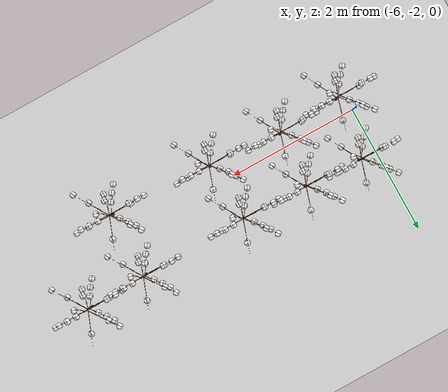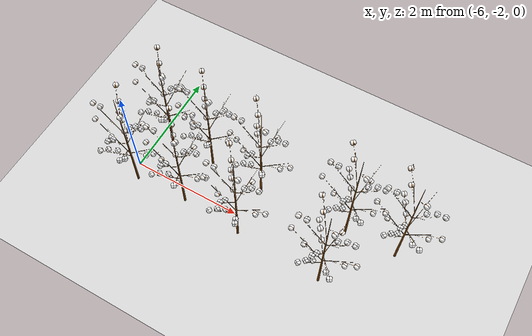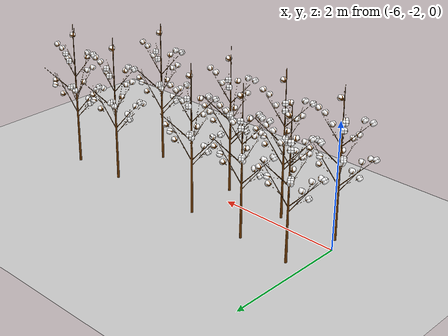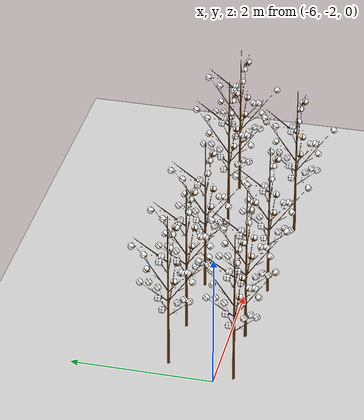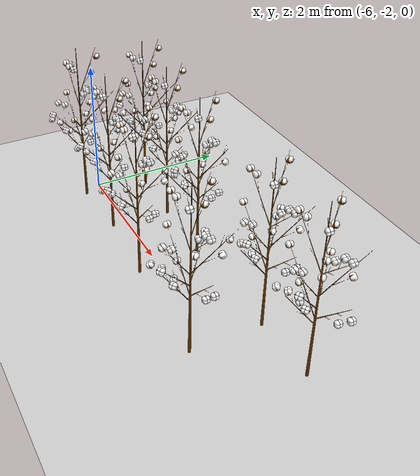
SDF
<sdf version="1.6">
 <world name="default">
  <model name="earth_plane">
   <static>1</static>
   <link name="link">
    <collision name="collision">
     <geometry><plane><normal>0 0 1</normal><size>100 100</size></plane></geometry>
     <surface><friction><ode><mu>100</mu><mu2>50</mu2></ode></friction></surface>
    </collision>
    <visual name="visual">
     <cast_shadows>0</cast_shadows>
     <geometry><plane><normal>0 0 1</normal><size>100 100</size></plane></geometry>
     <material>
      <script>
       <uri>model://earth_plane/materials/scripts</uri>
       <uri>model://earth_plane/materials/textures</uri>
       <name>vrc/earth</name>
      </script>
     </material>
    </visual>
    <velocity_decay><linear>0</linear><angular>0</angular></velocity_decay>
   </link>
  </model>
  <model name="cotton_clone_11">
   <link name="link">
    <collision name="collision">
     <geometry><mesh><scale>1 1 1</scale><uri>model://cotton/meshes/cotton.dae</uri></mesh></geometry>
    </collision>
    <inertial>
     <mass>1</mass>
     <inertia>
      <ixx>0.166667</ixx>
      <ixy>0</ixy>
      <ixz>0</ixz>
      <iyy>0.166667</iyy>
      <iyz>0</iyz>
      <izz>0.166667</izz>
     </inertia>
    </inertial>
    <visual name="visual">
     <geometry><mesh><scale>1 1 1</scale><uri>model://cotton/meshes/cotton.dae</uri></mesh></geometry>
    </visual>
    <velocity_decay><linear>0</linear><angular>0</angular></velocity_decay>
    <gravity>0</gravity>
   </link>
   <pose>-2.39067 -3 0 0 -0 0</pose>
   <static>1</static>
  </model>
  <model name="cotton_clone_12">
   <link name="link">
    <collision name="collision">
     <geometry><mesh><scale>1 1 1</scale><uri>model://cotton/meshes/cotton.dae</uri></mesh></geometry>
    </collision>
    <inertial>
     <mass>1</mass>
     <inertia>
      <ixx>0.166667</ixx>
      <ixy>0</ixy>
      <ixz>0</ixz>
      <iyy>0.166667</iyy>
      <iyz>0</iyz>
      <izz>0.166667</izz>
     </inertia>
    </inertial>
    <visual name="visual">
     <geometry><mesh><scale>1 1 1</scale><uri>model://cotton/meshes/cotton.dae</uri></mesh></geometry>
    </visual>
    <velocity_decay><linear>0</linear><angular>0</angular></velocity_decay>
    <gravity>0</gravity>
   </link>
   <pose>-2.251471 -2.062685 0 0 -0 0</pose>
   <static>1</static>
  </model>
  <model name="cotton_clone_13">
   <link name="link">
    <collision name="collision">
     <geometry><mesh><scale>1 1 1</scale><uri>model://cotton/meshes/cotton.dae</uri></mesh></geometry>
    </collision>
    <inertial>
     <mass>1</mass>
     <inertia>
      <ixx>0.166667</ixx>
      <ixy>0</ixy>
      <ixz>0</ixz>
      <iyy>0.166667</iyy>
      <iyz>0</iyz>
      <izz>0.166667</izz>
     </inertia>
    </inertial>
    <visual name="visual">
     <geometry><mesh><scale>1 1 1</scale><uri>model://cotton/meshes/cotton.dae</uri></mesh></geometry>
    </visual>
    <velocity_decay><linear>0</linear><angular>0</angular></velocity_decay>
    <gravity>0</gravity>
   </link>
   <pose>-1.427634 -2.955015 0 0 -0 0</pose>
   <static>1</static>
  </model>
  <model name="cotton_clone_14">
   <link name="link">
    <collision name="collision">
     <geometry><mesh><scale>1 1 1</scale><uri>model://cotton/meshes/cotton.dae</uri></mesh></geometry>
    </collision>
    <inertial>
     <mass>1</mass>
     <inertia>
      <ixx>0.166667</ixx>
      <ixy>0</ixy>
      <ixz>0</ixz>
      <iyy>0.166667</iyy>
      <iyz>0</iyz>
      <izz>0.166667</izz>
     </inertia>
    </inertial>
    <visual name="visual">
     <geometry><mesh><scale>1 1 1</scale><uri>model://cotton/meshes/cotton.dae</uri></mesh></geometry>
    </visual>
    <velocity_decay><linear>0</linear><angular>0</angular></velocity_decay>
    <gravity>0</gravity>
   </link>
   <pose>-1.374254 -2.105651 0 0 -0 0</pose>
   <static>1</static>
  </model>
  <model name="cotton_clone_15">
   <link name="link">
    <collision name="collision">
     <geometry><mesh><scale>1 1 1</scale><uri>model://cotton/meshes/cotton.dae</uri></mesh></geometry>
    </collision>
    <inertial>
     <mass>1</mass>
     <inertia>
      <ixx>0.166667</ixx>
      <ixy>0</ixy>
      <ixz>0</ixz>
      <iyy>0.166667</iyy>
      <iyz>0</iyz>
      <izz>0.166667</izz>
     </inertia>
    </inertial>
    <visual name="visual">
     <geometry><mesh><scale>1 1 1</scale><uri>model://cotton/meshes/cotton.dae</uri></mesh></geometry>
    </visual>
    <velocity_decay><linear>0</linear><angular>0</angular></velocity_decay>
    <gravity>0</gravity>
   </link>
   <pose>-0.363088 -2.138568 0 0 -0 0</pose>
   <static>1</static>
  </model>
  <model name="cotton_clone_16">
   <link name="link">
    <collision name="collision">
     <geometry><mesh><scale>1 1 1</scale><uri>model://cotton/meshes/cotton.dae</uri></mesh></geometry>
    </collision>
    <inertial>
     <mass>1</mass>
     <inertia>
      <ixx>0.166667</ixx>
      <ixy>0</ixy>
      <ixz>0</ixz>
      <iyy>0.166667</iyy>
      <iyz>0</iyz>
      <izz>0.166667</izz>
     </inertia>
    </inertial>
    <visual name="visual">
     <geometry><mesh><scale>1 1 1</scale><uri>model://cotton/meshes/cotton.dae</uri></mesh></geometry>
    </visual>
    <velocity_decay><linear>0</linear><angular>0</angular></velocity_decay>
    <gravity>0</gravity>
   </link>
   <pose>-0.304355 -3.03714 0 0 -0 0</pose>
   <static>1</static>
  </model>
  <model name="cotton_clone_17">
   <link name="link">
    <collision name="collision">
     <geometry><mesh><scale>1 1 1</scale><uri>model://cotton/meshes/cotton.dae</uri></mesh></geometry>
    </collision>
    <inertial>
     <mass>1</mass>
     <inertia>
      <ixx>0.166667</ixx>
      <ixy>0</ixy>
      <ixz>0</ixz>
      <iyy>0.166667</iyy>
      <iyz>0</iyz>
      <izz>0.166667</izz>
     </inertia>
    </inertial>
    <visual name="visual">
     <geometry><mesh><scale>1 1 1</scale><uri>model://cotton/meshes/cotton.dae</uri></mesh></geometry>
    </visual>
    <velocity_decay><linear>0</linear><angular>0</angular></velocity_decay>
    <gravity>0</gravity>
   </link>
   <pose>2.202172 -2.084283 0 0 -0 0</pose>
   <static>1</static>
  </model>
  <model name="cotton_clone_19">
   <link name="link">
    <collision name="collision">
     <geometry><mesh><scale>1 1 1</scale><uri>model://cotton/meshes/cotton.dae</uri></mesh></geometry>
    </collision>
    <inertial>
     <mass>1</mass>
     <inertia>
      <ixx>0.166667</ixx>
      <ixy>0</ixy>
      <ixz>0</ixz>
      <iyy>0.166667</iyy>
      <iyz>0</iyz>
      <izz>0.166667</izz>
     </inertia>
    </inertial>
    <visual name="visual">
     <geometry><mesh><scale>1 1 1</scale><uri>model://cotton/meshes/cotton.dae</uri></mesh></geometry>
    </visual>
    <velocity_decay><linear>0</linear><angular>0</angular></velocity_decay>
    <gravity>0</gravity>
   </link>
   <pose>1.28207 -3.11188 0 0 -0 0</pose>
   <static>1</static>
  </model>
  <model name="cotton_clone_x">
   <link name="link">
    <collision name="collision">
     <geometry><mesh><scale>1 1 1</scale><uri>model://cotton/meshes/cotton.dae</uri></mesh></geometry>
    </collision>
    <inertial>
     <mass>1</mass>
     <inertia>
      <ixx>0.166667</ixx>
      <ixy>0</ixy>
      <ixz>0</ixz>
      <iyy>0.166667</iyy>
      <iyz>0</iyz>
      <izz>0.166667</izz>
     </inertia>
    </inertial>
    <visual name="visual">
     <geometry><mesh><scale>1 1 1</scale><uri>model://cotton/meshes/cotton.dae</uri></mesh></geometry>
    </visual>
    <velocity_decay><linear>0</linear><angular>0</angular></velocity_decay>
    <gravity>0</gravity>
   </link>
   <pose>1.28207 -2.11188 0 0 -0 0</pose>
   <static>1</static>
  </model>
 </world>
</sdf>
